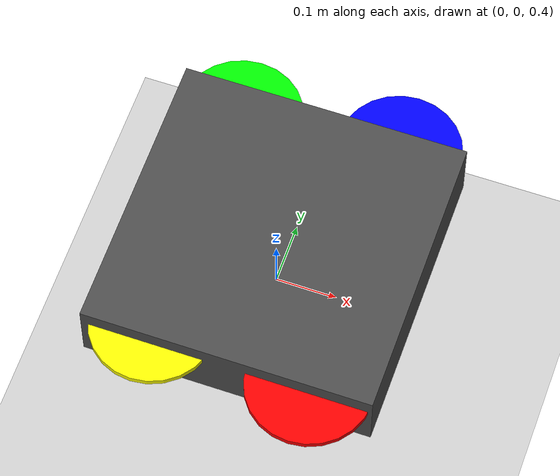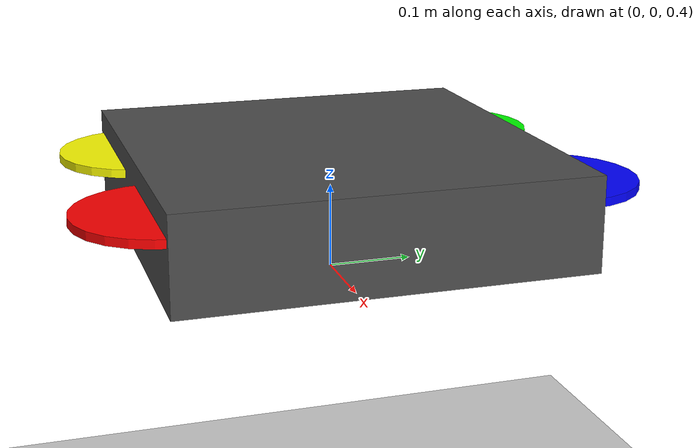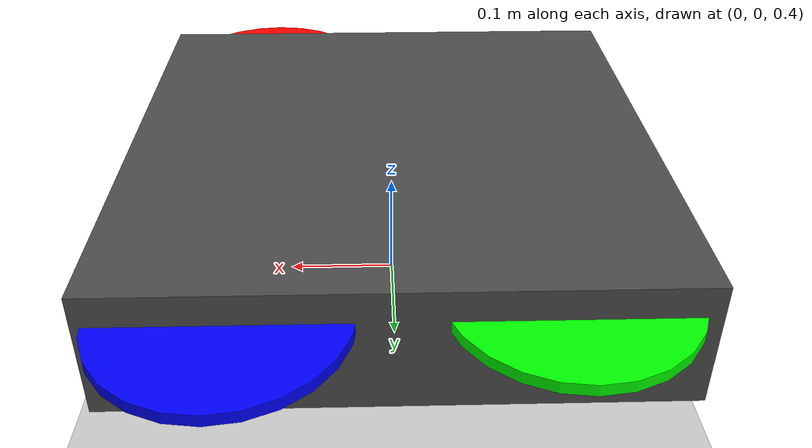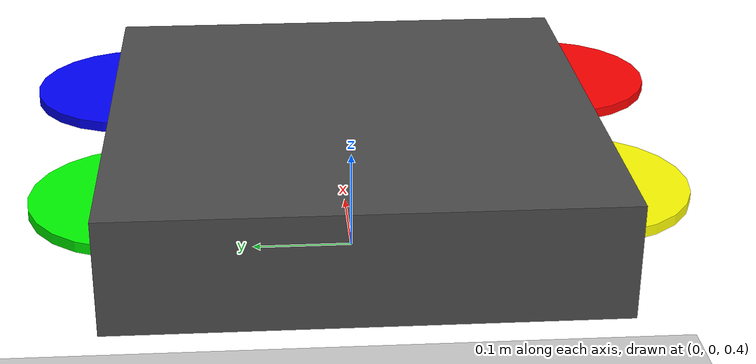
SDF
<?xml version="1.0" ?>
<sdf version="1.9">
  <world name="minzanix_world">
    <physics name="1ms" type="ignore">
      <max_step_size>0.004</max_step_size>
      <real_time_factor>1.0</real_time_factor>
    </physics>

    <plugin filename="gz-sim-physics-system" name="gz::sim::systems::Physics"></plugin>
    <plugin filename="gz-sim-sensors-system" name="gz::sim::systems::Sensors">
      <render_engine>ogre2</render_engine>
    </plugin>
    <plugin filename="gz-sim-imu-system" name="gz::sim::systems::Imu"></plugin>
    <plugin filename="gz-sim-air-pressure-system" name="gz::sim::systems::AirPressure"></plugin>
    <plugin filename="gz-sim-multicopter-motor-model-system" name="gz::sim::systems::MulticopterMotorModel"></plugin>
    <plugin filename="gz-sim-multicopter-control-system" name="gz::sim::systems::MulticopterVelocityControl"></plugin>

    <scene>
      <ambient>1.0 1.0 1.0</ambient>
      <background>0.8 0.8 0.8</background>
    </scene>

    <light type="directional" name="sun">
      <cast_shadows>true</cast_shadows>
      <pose>0 0 10 0 0 0</pose>
      <diffuse>0.8 0.8 0.8 1</diffuse>
      <specular>0.2 0.2 0.2 1</specular>
      <attenuation>
        <range>1000</range>
        <constant>0.9</constant>
        <linear>0.01</linear>
        <quadratic>0.001</quadratic>
      </attenuation>
      <direction>-0.5 0.1 -0.9</direction>
    </light>

    <model name="ground_plane">
      <static>true</static>
      <link name="link">
        <collision name="collision">
          <geometry>
            <plane>
              <normal>0 0 1</normal>
              <size>100 100</size>
            </plane>
          </geometry>
        </collision>
        <visual name="visual">
          <geometry>
            <plane>
              <normal>0 0 1</normal>
              <size>100 100</size>
            </plane>
          </geometry>
          <material>
            <ambient>0.8 0.8 0.8 1</ambient>
            <diffuse>0.8 0.8 0.8 1</diffuse>
          </material>
        </visual>
      </link>
    </model>

    <model name="x500">
      <pose>0 0 0.5 0 0 0</pose>

      <!-- Base link (quadcopter frame) -->
      <link name="base_link">
        <inertial>
          <mass>1.5</mass>
          <inertia>
            <ixx>0.029125</ixx>
            <ixy>0</ixy>
            <ixz>0</ixz>
            <iyy>0.029125</iyy>
            <iyz>0</iyz>
            <izz>0.055225</izz>
          </inertia>
        </inertial>

        <visual name="body_visual">
          <geometry>
            <box>
              <size>0.47 0.47 0.11</size>
            </box>
          </geometry>
          <material>
            <ambient>0.2 0.2 0.2 1</ambient>
            <diffuse>0.3 0.3 0.3 1</diffuse>
          </material>
        </visual>

        <collision name="body_collision">
          <geometry>
            <box>
              <size>0.47 0.47 0.11</size>
            </box>
          </geometry>
        </collision>

        <!-- IMU Sensor -->
        <sensor name="imu_sensor" type="imu">
          <always_on>1</always_on>
          <update_rate>250</update_rate>
          <imu>
            <angular_velocity>
              <x><noise type="gaussian"><mean>0</mean><stddev>0.009</stddev></noise></x>
              <y><noise type="gaussian"><mean>0</mean><stddev>0.009</stddev></noise></y>
              <z><noise type="gaussian"><mean>0</mean><stddev>0.009</stddev></noise></z>
            </angular_velocity>
            <linear_acceleration>
              <x><noise type="gaussian"><mean>0</mean><stddev>0.021</stddev></noise></x>
              <y><noise type="gaussian"><mean>0</mean><stddev>0.021</stddev></noise></y>
              <z><noise type="gaussian"><mean>0</mean><stddev>0.021</stddev></noise></z>
            </linear_acceleration>
          </imu>
          <topic>/world/minzanix_world/model/x500/link/base_link/sensor/imu_sensor/imu</topic>
        </sensor>

        <!-- Air Pressure Sensor (Barometer) -->
        <sensor name="air_pressure_sensor" type="air_pressure">
          <always_on>1</always_on>
          <update_rate>50</update_rate>
          <air_pressure>
            <pressure>
              <noise type="gaussian">
                <mean>0</mean>
                <stddev>0.01</stddev>
              </noise>
            </pressure>
          </air_pressure>
          <topic>/world/minzanix_world/model/x500/link/base_link/sensor/air_pressure_sensor/air_pressure</topic>
        </sensor>
      </link>

      <!-- Rotor 0 (Front Right - CW) -->
      <link name="rotor_0">
        <pose relative_to="base_link">0.13 -0.22 0.023 0 0 0</pose>
        <inertial>
          <mass>0.005</mass>
          <inertia>
            <ixx>0.000001</ixx>
            <iyy>0.000001</iyy>
            <izz>0.000001</izz>
          </inertia>
        </inertial>
        <visual name="visual">
          <geometry>
            <cylinder><radius>0.1</radius><length>0.01</length></cylinder>
          </geometry>
          <material>
            <ambient>1 0 0 1</ambient>
            <diffuse>1 0 0 1</diffuse>
          </material>
        </visual>
      </link>

      <joint name="rotor_0_joint" type="revolute">
        <parent>base_link</parent>
        <child>rotor_0</child>
        <axis>
          <xyz>0 0 1</xyz>
          <limit>
            <lower>-1e+12</lower>
            <upper>1e+12</upper>
            <effort>-1e6</effort>
          </limit>
        </axis>
      </joint>

      <!-- Rotor 1 (Rear Left - CW) -->
      <link name="rotor_1">
        <pose relative_to="base_link">-0.13 0.20 0.023 0 0 0</pose>
        <inertial>
          <mass>0.005</mass>
          <inertia>
            <ixx>0.000001</ixx>
            <iyy>0.000001</iyy>
            <izz>0.000001</izz>
          </inertia>
        </inertial>
        <visual name="visual">
          <geometry>
            <cylinder><radius>0.1</radius><length>0.01</length></cylinder>
          </geometry>
          <material>
            <ambient>0 1 0 1</ambient>
            <diffuse>0 1 0 1</diffuse>
          </material>
        </visual>
      </link>

      <joint name="rotor_1_joint" type="revolute">
        <parent>base_link</parent>
        <child>rotor_1</child>
        <axis>
          <xyz>0 0 1</xyz>
          <limit>
            <lower>-1e+12</lower>
            <upper>1e+12</upper>
            <effort>-1e6</effort>
          </limit>
        </axis>
      </joint>

      <!-- Rotor 2 (Front Left - CCW) -->
      <link name="rotor_2">
        <pose relative_to="base_link">0.13 0.22 0.023 0 0 0</pose>
        <inertial>
          <mass>0.005</mass>
          <inertia>
            <ixx>0.000001</ixx>
            <iyy>0.000001</iyy>
            <izz>0.000001</izz>
          </inertia>
        </inertial>
        <visual name="visual">
          <geometry>
            <cylinder><radius>0.1</radius><length>0.01</length></cylinder>
          </geometry>
          <material>
            <ambient>0 0 1 1</ambient>
            <diffuse>0 0 1 1</diffuse>
          </material>
        </visual>
      </link>

      <joint name="rotor_2_joint" type="revolute">
        <parent>base_link</parent>
        <child>rotor_2</child>
        <axis>
          <xyz>0 0 1</xyz>
          <limit>
            <lower>-1e+12</lower>
            <upper>1e+12</upper>
            <effort>-1e6</effort>
          </limit>
        </axis>
      </joint>

      <!-- Rotor 3 (Rear Right - CCW) -->
      <link name="rotor_3">
        <pose relative_to="base_link">-0.13 -0.20 0.023 0 0 0</pose>
        <inertial>
          <mass>0.005</mass>
          <inertia>
            <ixx>0.000001</ixx>
            <iyy>0.000001</iyy>
            <izz>0.000001</izz>
          </inertia>
        </inertial>
        <visual name="visual">
          <geometry>
            <cylinder><radius>0.1</radius><length>0.01</length></cylinder>
          </geometry>
          <material>
            <ambient>1 1 0 1</ambient>
            <diffuse>1 1 0 1</diffuse>
          </material>
        </visual>
      </link>

      <joint name="rotor_3_joint" type="revolute">
        <parent>base_link</parent>
        <child>rotor_3</child>
        <axis>
          <xyz>0 0 1</xyz>
          <limit>
            <lower>-1e+12</lower>
            <upper>1e+12</upper>
            <effort>-1e6</effort>
          </limit>
        </axis>
      </joint>

      <!-- Multicopter Motor Model Plugin -->
      <plugin filename="gz-sim-multicopter-motor-model-system" name="gz::sim::systems::MulticopterMotorModel">
        <robotNamespace>x500</robotNamespace>
        <jointName>rotor_0_joint</jointName>
        <linkName>rotor_0</linkName>
        <turningDirection>cw</turningDirection>
        <timeConstantUp>0.0125</timeConstantUp>
        <timeConstantDown>0.025</timeConstantDown>
        <maxRotVelocity>1100</maxRotVelocity>
        <motorConstant>8.54858e-06</motorConstant>
        <momentConstant>0.01</momentConstant>
        <commandSubTopic>command/motor_speed</commandSubTopic>
        <motorNumber>0</motorNumber>
        <rotorDragCoefficient>0.000806428</rotorDragCoefficient>
        <rollingMomentCoefficient>1e-06</rollingMomentCoefficient>
        <motorSpeedPubTopic>motor_speed/0</motorSpeedPubTopic>
        <rotorVelocitySlowdownSim>10</rotorVelocitySlowdownSim>
      </plugin>

      <plugin filename="gz-sim-multicopter-motor-model-system" name="gz::sim::systems::MulticopterMotorModel">
        <robotNamespace>x500</robotNamespace>
        <jointName>rotor_1_joint</jointName>
        <linkName>rotor_1</linkName>
        <turningDirection>cw</turningDirection>
        <timeConstantUp>0.0125</timeConstantUp>
        <timeConstantDown>0.025</timeConstantDown>
        <maxRotVelocity>1100</maxRotVelocity>
        <motorConstant>8.54858e-06</motorConstant>
        <momentConstant>0.01</momentConstant>
        <commandSubTopic>command/motor_speed</commandSubTopic>
        <motorNumber>1</motorNumber>
        <rotorDragCoefficient>0.000806428</rotorDragCoefficient>
        <rollingMomentCoefficient>1e-06</rollingMomentCoefficient>
        <motorSpeedPubTopic>motor_speed/1</motorSpeedPubTopic>
        <rotorVelocitySlowdownSim>10</rotorVelocitySlowdownSim>
      </plugin>

      <plugin filename="gz-sim-multicopter-motor-model-system" name="gz::sim::systems::MulticopterMotorModel">
        <robotNamespace>x500</robotNamespace>
        <jointName>rotor_2_joint</jointName>
        <linkName>rotor_2</linkName>
        <turningDirection>ccw</turningDirection>
        <timeConstantUp>0.0125</timeConstantUp>
        <timeConstantDown>0.025</timeConstantDown>
        <maxRotVelocity>1100</maxRotVelocity>
        <motorConstant>8.54858e-06</motorConstant>
        <momentConstant>0.01</momentConstant>
        <commandSubTopic>command/motor_speed</commandSubTopic>
        <motorNumber>2</motorNumber>
        <rotorDragCoefficient>0.000806428</rotorDragCoefficient>
        <rollingMomentCoefficient>1e-06</rollingMomentCoefficient>
        <motorSpeedPubTopic>motor_speed/2</motorSpeedPubTopic>
        <rotorVelocitySlowdownSim>10</rotorVelocitySlowdownSim>
      </plugin>

      <plugin filename="gz-sim-multicopter-motor-model-system" name="gz::sim::systems::MulticopterMotorModel">
        <robotNamespace>x500</robotNamespace>
        <jointName>rotor_3_joint</jointName>
        <linkName>rotor_3</linkName>
        <turningDirection>ccw</turningDirection>
        <timeConstantUp>0.0125</timeConstantUp>
        <timeConstantDown>0.025</timeConstantDown>
        <maxRotVelocity>1100</maxRotVelocity>
        <motorConstant>8.54858e-06</motorConstant>
        <momentConstant>0.01</momentConstant>
        <commandSubTopic>command/motor_speed</commandSubTopic>
        <motorNumber>3</motorNumber>
        <rotorDragCoefficient>0.000806428</rotorDragCoefficient>
        <rollingMomentCoefficient>1e-06</rollingMomentCoefficient>
        <motorSpeedPubTopic>motor_speed/3</motorSpeedPubTopic>
        <rotorVelocitySlowdownSim>10</rotorVelocitySlowdownSim>
      </plugin>

    </model>
  </world>
</sdf>
